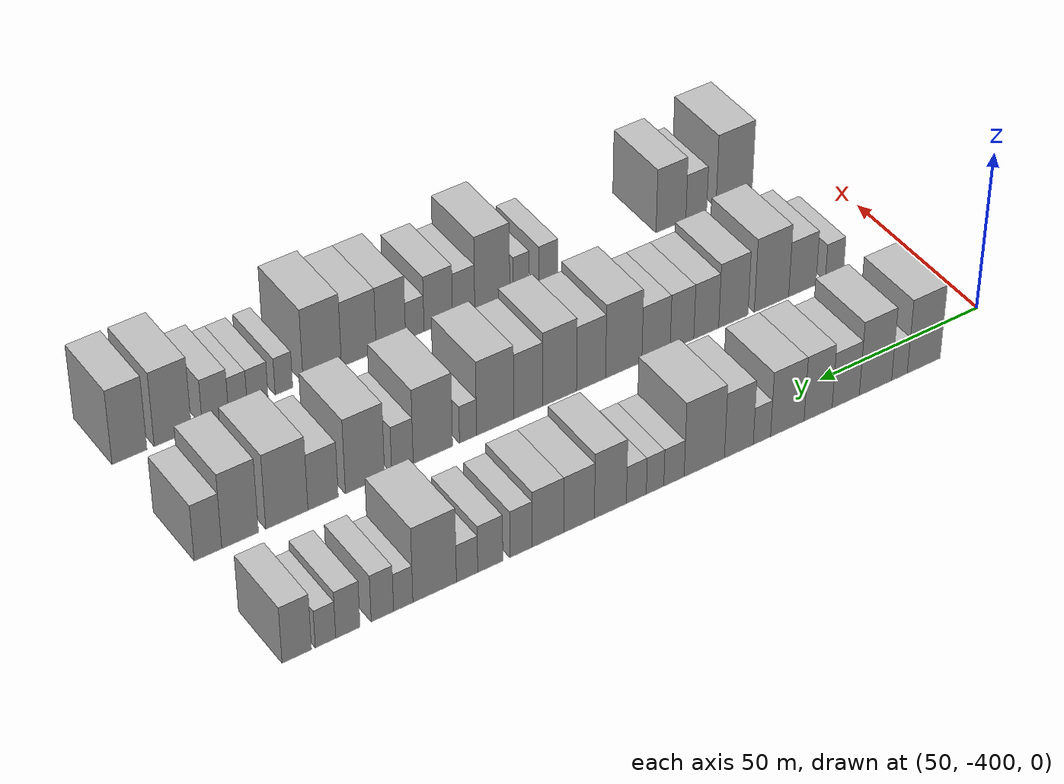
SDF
<sdf version="1.6">
 <world name="default">
  <model name="building_1">
   <static>1</static>
   <pose>50.0000 -374.7621 0 0.000000 0.000000 0.000000</pose>
   <link name="link">
    <pose>0 0 12.00 0 0 0</pose>
    <collision name="collision"><geometry><box><size>20.0000 10.4758 24.0000</size></box></geometry></collision>
    <visual name="visual">
     <cast_shadows>0</cast_shadows>
     <geometry><box><size>20.0000 10.4758 24.0000</size></box></geometry>
     <material>
      <script>
       <uri>model://HANNAS_wall/materials/scripts</uri>
       <uri>model://HANNAS_wall/materials/textures</uri>
       <name>vrc/HANNAS_wall</name>
      </script>
     </material>
    </visual>
   </link>
  </model>
  <model name="building_2">
   <static>1</static>
   <pose>50.0000 -367.0660 0 0.000000 0.000000 0.000000</pose>
   <link name="link">
    <pose>0 0 6.00 0 0 0</pose>
    <collision name="collision"><geometry><box><size>20.0000 4.9163 12.0000</size></box></geometry></collision>
    <visual name="visual">
     <cast_shadows>0</cast_shadows>
     <geometry><box><size>20.0000 4.9163 12.0000</size></box></geometry>
     <material>
      <script>
       <uri>model://HANNAS_wall/materials/scripts</uri>
       <uri>model://HANNAS_wall/materials/textures</uri>
       <name>vrc/HANNAS_wall</name>
      </script>
     </material>
    </visual>
   </link>
  </model>
  <model name="building_3">
   <static>1</static>
   <pose>50.0000 -359.5411 0 0.000000 0.000000 0.000000</pose>
   <link name="link">
    <pose>0 0 12.00 0 0 0</pose>
    <collision name="collision"><geometry><box><size>20.0000 10.1335 24.0000</size></box></geometry></collision>
    <visual name="visual">
     <cast_shadows>0</cast_shadows>
     <geometry><box><size>20.0000 10.1335 24.0000</size></box></geometry>
     <material>
      <script>
       <uri>model://HANNAS_wall/materials/scripts</uri>
       <uri>model://HANNAS_wall/materials/textures</uri>
       <name>vrc/HANNAS_wall</name>
      </script>
     </material>
    </visual>
   </link>
  </model>
  <model name="building_4">
   <static>1</static>
   <pose>50.0000 -350.2581 0 0.000000 0.000000 0.000000</pose>
   <link name="link">
    <pose>0 0 9.00 0 0 0</pose>
    <collision name="collision"><geometry><box><size>20.0000 8.4324 18.0000</size></box></geometry></collision>
    <visual name="visual">
     <cast_shadows>0</cast_shadows>
     <geometry><box><size>20.0000 8.4324 18.0000</size></box></geometry>
     <material>
      <script>
       <uri>model://HANNAS_wall/materials/scripts</uri>
       <uri>model://HANNAS_wall/materials/textures</uri>
       <name>vrc/HANNAS_wall</name>
      </script>
     </material>
    </visual>
   </link>
  </model>
  <model name="building_5">
   <static>1</static>
   <pose>50.0000 -341.7253 0 0.000000 0.000000 0.000000</pose>
   <link name="link">
    <pose>0 0 10.50 0 0 0</pose>
    <collision name="collision"><geometry><box><size>20.0000 8.6331 21.0000</size></box></geometry></collision>
    <visual name="visual">
     <cast_shadows>0</cast_shadows>
     <geometry><box><size>20.0000 8.6331 21.0000</size></box></geometry>
     <material>
      <script>
       <uri>model://HANNAS_wall/materials/scripts</uri>
       <uri>model://HANNAS_wall/materials/textures</uri>
       <name>vrc/HANNAS_wall</name>
      </script>
     </material>
    </visual>
   </link>
  </model>
  <model name="building_6">
   <static>1</static>
   <pose>50.0000 -332.3009 0 0.000000 0.000000 0.000000</pose>
   <link name="link">
    <pose>0 0 10.50 0 0 0</pose>
    <collision name="collision"><geometry><box><size>20.0000 10.2156 21.0000</size></box></geometry></collision>
    <visual name="visual">
     <cast_shadows>0</cast_shadows>
     <geometry><box><size>20.0000 10.2156 21.0000</size></box></geometry>
     <material>
      <script>
       <uri>model://HANNAS_wall/materials/scripts</uri>
       <uri>model://HANNAS_wall/materials/textures</uri>
       <name>vrc/HANNAS_wall</name>
      </script>
     </material>
    </visual>
   </link>
  </model>
  <model name="building_7">
   <static>1</static>
   <pose>50.0000 -324.5633 0 0.000000 0.000000 0.000000</pose>
   <link name="link">
    <pose>0 0 6.00 0 0 0</pose>
    <collision name="collision"><geometry><box><size>20.0000 5.2597 12.0000</size></box></geometry></collision>
    <visual name="visual">
     <cast_shadows>0</cast_shadows>
     <geometry><box><size>20.0000 5.2597 12.0000</size></box></geometry>
     <material>
      <script>
       <uri>model://HANNAS_wall/materials/scripts</uri>
       <uri>model://HANNAS_wall/materials/textures</uri>
       <name>vrc/HANNAS_wall</name>
      </script>
     </material>
    </visual>
   </link>
  </model>
  <model name="building_8">
   <static>1</static>
   <pose>50.0000 -317.5954 0 0.000000 0.000000 0.000000</pose>
   <link name="link">
    <pose>0 0 10.50 0 0 0</pose>
    <collision name="collision"><geometry><box><size>20.0000 8.6762 21.0000</size></box></geometry></collision>
    <visual name="visual">
     <cast_shadows>0</cast_shadows>
     <geometry><box><size>20.0000 8.6762 21.0000</size></box></geometry>
     <material>
      <script>
       <uri>model://HANNAS_wall/materials/scripts</uri>
       <uri>model://HANNAS_wall/materials/textures</uri>
       <name>vrc/HANNAS_wall</name>
      </script>
     </material>
    </visual>
   </link>
  </model>
  <model name="building_9">
   <static>1</static>
   <pose>50.0000 -307.2627 0 0.000000 0.000000 0.000000</pose>
   <link name="link">
    <pose>0 0 12.00 0 0 0</pose>
    <collision name="collision"><geometry><box><size>20.0000 11.9893 24.0000</size></box></geometry></collision>
    <visual name="visual">
     <cast_shadows>0</cast_shadows>
     <geometry><box><size>20.0000 11.9893 24.0000</size></box></geometry>
     <material>
      <script>
       <uri>model://HANNAS_wall/materials/scripts</uri>
       <uri>model://HANNAS_wall/materials/textures</uri>
       <name>vrc/HANNAS_wall</name>
      </script>
     </material>
    </visual>
   </link>
  </model>
  <model name="building_10">
   <static>1</static>
   <pose>50.0000 -298.2695 0 0.000000 0.000000 0.000000</pose>
   <link name="link">
    <pose>0 0 6.00 0 0 0</pose>
    <collision name="collision"><geometry><box><size>20.0000 5.9970 12.0000</size></box></geometry></collision>
    <visual name="visual">
     <cast_shadows>0</cast_shadows>
     <geometry><box><size>20.0000 5.9970 12.0000</size></box></geometry>
     <material>
      <script>
       <uri>model://HANNAS_wall/materials/scripts</uri>
       <uri>model://HANNAS_wall/materials/textures</uri>
       <name>vrc/HANNAS_wall</name>
      </script>
     </material>
    </visual>
   </link>
  </model>
  <model name="building_11">
   <static>1</static>
   <pose>50.0000 -292.7039 0 0.000000 0.000000 0.000000</pose>
   <link name="link">
    <pose>0 0 6.00 0 0 0</pose>
    <collision name="collision"><geometry><box><size>20.0000 5.1343 12.0000</size></box></geometry></collision>
    <visual name="visual">
     <cast_shadows>0</cast_shadows>
     <geometry><box><size>20.0000 5.1343 12.0000</size></box></geometry>
     <material>
      <script>
       <uri>model://HANNAS_wall/materials/scripts</uri>
       <uri>model://HANNAS_wall/materials/textures</uri>
       <name>vrc/HANNAS_wall</name>
      </script>
     </material>
    </visual>
   </link>
  </model>
  <model name="building_12">
   <static>1</static>
   <pose>50.0000 -287.2224 0 0.000000 0.000000 0.000000</pose>
   <link name="link">
    <pose>0 0 6.00 0 0 0</pose>
    <collision name="collision"><geometry><box><size>20.0000 5.8285 12.0000</size></box></geometry></collision>
    <visual name="visual">
     <cast_shadows>0</cast_shadows>
     <geometry><box><size>20.0000 5.8285 12.0000</size></box></geometry>
     <material>
      <script>
       <uri>model://HANNAS_wall/materials/scripts</uri>
       <uri>model://HANNAS_wall/materials/textures</uri>
       <name>vrc/HANNAS_wall</name>
      </script>
     </material>
    </visual>
   </link>
  </model>
  <model name="building_13">
   <static>1</static>
   <pose>50.0000 -279.6714 0 0.000000 0.000000 0.000000</pose>
   <link name="link">
    <pose>0 0 10.50 0 0 0</pose>
    <collision name="collision"><geometry><box><size>20.0000 9.2735 21.0000</size></box></geometry></collision>
    <visual name="visual">
     <cast_shadows>0</cast_shadows>
     <geometry><box><size>20.0000 9.2735 21.0000</size></box></geometry>
     <material>
      <script>
       <uri>model://HANNAS_wall/materials/scripts</uri>
       <uri>model://HANNAS_wall/materials/textures</uri>
       <name>vrc/HANNAS_wall</name>
      </script>
     </material>
    </visual>
   </link>
  </model>
  <model name="building_14">
   <static>1</static>
   <pose>50.0000 -270.6329 0 0.000000 0.000000 0.000000</pose>
   <link name="link">
    <pose>0 0 9.00 0 0 0</pose>
    <collision name="collision"><geometry><box><size>20.0000 8.8036 18.0000</size></box></geometry></collision>
    <visual name="visual">
     <cast_shadows>0</cast_shadows>
     <geometry><box><size>20.0000 8.8036 18.0000</size></box></geometry>
     <material>
      <script>
       <uri>model://HANNAS_wall/materials/scripts</uri>
       <uri>model://HANNAS_wall/materials/textures</uri>
       <name>vrc/HANNAS_wall</name>
      </script>
     </material>
    </visual>
   </link>
  </model>
  <model name="building_15">
   <static>1</static>
   <pose>50.0000 -261.7483 0 0.000000 0.000000 0.000000</pose>
   <link name="link">
    <pose>0 0 9.00 0 0 0</pose>
    <collision name="collision"><geometry><box><size>20.0000 8.9656 18.0000</size></box></geometry></collision>
    <visual name="visual">
     <cast_shadows>0</cast_shadows>
     <geometry><box><size>20.0000 8.9656 18.0000</size></box></geometry>
     <material>
      <script>
       <uri>model://HANNAS_wall/materials/scripts</uri>
       <uri>model://HANNAS_wall/materials/textures</uri>
       <name>vrc/HANNAS_wall</name>
      </script>
     </material>
    </visual>
   </link>
  </model>
  <model name="building_16">
   <static>1</static>
   <pose>50.0000 -254.1331 0 0.000000 0.000000 0.000000</pose>
   <link name="link">
    <pose>0 0 7.50 0 0 0</pose>
    <collision name="collision"><geometry><box><size>20.0000 6.2648 15.0000</size></box></geometry></collision>
    <visual name="visual">
     <cast_shadows>0</cast_shadows>
     <geometry><box><size>20.0000 6.2648 15.0000</size></box></geometry>
     <material>
      <script>
       <uri>model://HANNAS_wall/materials/scripts</uri>
       <uri>model://HANNAS_wall/materials/textures</uri>
       <name>vrc/HANNAS_wall</name>
      </script>
     </material>
    </visual>
   </link>
  </model>
  <model name="building_17">
   <static>1</static>
   <pose>50.0000 -245.4952 0 0.000000 0.000000 0.000000</pose>
   <link name="link">
    <pose>0 0 7.50 0 0 0</pose>
    <collision name="collision"><geometry><box><size>20.0000 7.0111 15.0000</size></box></geometry></collision>
    <visual name="visual">
     <cast_shadows>0</cast_shadows>
     <geometry><box><size>20.0000 7.0111 15.0000</size></box></geometry>
     <material>
      <script>
       <uri>model://HANNAS_wall/materials/scripts</uri>
       <uri>model://HANNAS_wall/materials/textures</uri>
       <name>vrc/HANNAS_wall</name>
      </script>
     </material>
    </visual>
   </link>
  </model>
  <model name="building_18">
   <static>1</static>
   <pose>50.0000 -239.0302 0 0.000000 0.000000 0.000000</pose>
   <link name="link">
    <pose>0 0 6.00 0 0 0</pose>
    <collision name="collision"><geometry><box><size>20.0000 5.9189 12.0000</size></box></geometry></collision>
    <visual name="visual">
     <cast_shadows>0</cast_shadows>
     <geometry><box><size>20.0000 5.9189 12.0000</size></box></geometry>
     <material>
      <script>
       <uri>model://HANNAS_wall/materials/scripts</uri>
       <uri>model://HANNAS_wall/materials/textures</uri>
       <name>vrc/HANNAS_wall</name>
      </script>
     </material>
    </visual>
   </link>
  </model>
  <model name="building_19">
   <static>1</static>
   <pose>50.0000 -230.0739 0 0.000000 0.000000 0.000000</pose>
   <link name="link">
    <pose>0 0 12.00 0 0 0</pose>
    <collision name="collision"><geometry><box><size>20.0000 11.9937 24.0000</size></box></geometry></collision>
    <visual name="visual">
     <cast_shadows>0</cast_shadows>
     <geometry><box><size>20.0000 11.9937 24.0000</size></box></geometry>
     <material>
      <script>
       <uri>model://HANNAS_wall/materials/scripts</uri>
       <uri>model://HANNAS_wall/materials/textures</uri>
       <name>vrc/HANNAS_wall</name>
      </script>
     </material>
    </visual>
   </link>
  </model>
  <model name="building_20">
   <static>1</static>
   <pose>50.0000 -221.4494 0 0.000000 0.000000 0.000000</pose>
   <link name="link">
    <pose>0 0 6.00 0 0 0</pose>
    <collision name="collision"><geometry><box><size>20.0000 5.2555 12.0000</size></box></geometry></collision>
    <visual name="visual">
     <cast_shadows>0</cast_shadows>
     <geometry><box><size>20.0000 5.2555 12.0000</size></box></geometry>
     <material>
      <script>
       <uri>model://HANNAS_wall/materials/scripts</uri>
       <uri>model://HANNAS_wall/materials/textures</uri>
       <name>vrc/HANNAS_wall</name>
      </script>
     </material>
    </visual>
   </link>
  </model>
  <model name="building_21">
   <static>1</static>
   <pose>50.0000 -215.7744 0 0.000000 0.000000 0.000000</pose>
   <link name="link">
    <pose>0 0 7.50 0 0 0</pose>
    <collision name="collision"><geometry><box><size>20.0000 6.0945 15.0000</size></box></geometry></collision>
    <visual name="visual">
     <cast_shadows>0</cast_shadows>
     <geometry><box><size>20.0000 6.0945 15.0000</size></box></geometry>
     <material>
      <script>
       <uri>model://HANNAS_wall/materials/scripts</uri>
       <uri>model://HANNAS_wall/materials/textures</uri>
       <name>vrc/HANNAS_wall</name>
      </script>
     </material>
    </visual>
   </link>
  </model>
  <model name="building_22">
   <static>1</static>
   <pose>50.0000 -206.4561 0 0.000000 0.000000 0.000000</pose>
   <link name="link">
    <pose>0 0 7.50 0 0 0</pose>
    <collision name="collision"><geometry><box><size>20.0000 6.5420 15.0000</size></box></geometry></collision>
    <visual name="visual">
     <cast_shadows>0</cast_shadows>
     <geometry><box><size>20.0000 6.5420 15.0000</size></box></geometry>
     <material>
      <script>
       <uri>model://HANNAS_wall/materials/scripts</uri>
       <uri>model://HANNAS_wall/materials/textures</uri>
       <name>vrc/HANNAS_wall</name>
      </script>
     </material>
    </visual>
   </link>
  </model>
  <model name="building_23">
   <static>1</static>
   <pose>50.0000 -200.4488 0 0.000000 0.000000 0.000000</pose>
   <link name="link">
    <pose>0 0 6.00 0 0 0</pose>
    <collision name="collision"><geometry><box><size>20.0000 5.4726 12.0000</size></box></geometry></collision>
    <visual name="visual">
     <cast_shadows>0</cast_shadows>
     <geometry><box><size>20.0000 5.4726 12.0000</size></box></geometry>
     <material>
      <script>
       <uri>model://HANNAS_wall/materials/scripts</uri>
       <uri>model://HANNAS_wall/materials/textures</uri>
       <name>vrc/HANNAS_wall</name>
      </script>
     </material>
    </visual>
   </link>
  </model>
  <model name="building_24">
   <static>1</static>
   <pose>50.0000 -192.8077 0 0.000000 0.000000 0.000000</pose>
   <link name="link">
    <pose>0 0 9.00 0 0 0</pose>
    <collision name="collision"><geometry><box><size>20.0000 7.8096 18.0000</size></box></geometry></collision>
    <visual name="visual">
     <cast_shadows>0</cast_shadows>
     <geometry><box><size>20.0000 7.8096 18.0000</size></box></geometry>
     <material>
      <script>
       <uri>model://HANNAS_wall/materials/scripts</uri>
       <uri>model://HANNAS_wall/materials/textures</uri>
       <name>vrc/HANNAS_wall</name>
      </script>
     </material>
    </visual>
   </link>
  </model>
  <model name="building_86">
   <static>1</static>
   <pose>90.0000 -377.0610 0 0.000000 0.000000 0.000000</pose>
   <link name="link">
    <pose>0 0 6.00 0 0 0</pose>
    <collision name="collision"><geometry><box><size>20.0000 5.8781 12.0000</size></box></geometry></collision>
    <visual name="visual">
     <cast_shadows>0</cast_shadows>
     <geometry><box><size>20.0000 5.8781 12.0000</size></box></geometry>
     <material>
      <script>
       <uri>model://HANNAS_wall/materials/scripts</uri>
       <uri>model://HANNAS_wall/materials/textures</uri>
       <name>vrc/HANNAS_wall</name>
      </script>
     </material>
    </visual>
   </link>
  </model>
  <model name="building_87">
   <static>1</static>
   <pose>90.0000 -366.7489 0 0.000000 0.000000 0.000000</pose>
   <link name="link">
    <pose>0 0 9.00 0 0 0</pose>
    <collision name="collision"><geometry><box><size>20.0000 8.7460 18.0000</size></box></geometry></collision>
    <visual name="visual">
     <cast_shadows>0</cast_shadows>
     <geometry><box><size>20.0000 8.7460 18.0000</size></box></geometry>
     <material>
      <script>
       <uri>model://HANNAS_wall/materials/scripts</uri>
       <uri>model://HANNAS_wall/materials/textures</uri>
       <name>vrc/HANNAS_wall</name>
      </script>
     </material>
    </visual>
   </link>
  </model>
  <model name="building_88">
   <static>1</static>
   <pose>90.0000 -356.9333 0 0.000000 0.000000 0.000000</pose>
   <link name="link">
    <pose>0 0 12.00 0 0 0</pose>
    <collision name="collision"><geometry><box><size>20.0000 10.8852 24.0000</size></box></geometry></collision>
    <visual name="visual">
     <cast_shadows>0</cast_shadows>
     <geometry><box><size>20.0000 10.8852 24.0000</size></box></geometry>
     <material>
      <script>
       <uri>model://HANNAS_wall/materials/scripts</uri>
       <uri>model://HANNAS_wall/materials/textures</uri>
       <name>vrc/HANNAS_wall</name>
      </script>
     </material>
    </visual>
   </link>
  </model>
  <model name="building_89">
   <static>1</static>
   <pose>90.0000 -344.9019 0 0.000000 0.000000 0.000000</pose>
   <link name="link">
    <pose>0 0 10.50 0 0 0</pose>
    <collision name="collision"><geometry><box><size>20.0000 9.1775 21.0000</size></box></geometry></collision>
    <visual name="visual">
     <cast_shadows>0</cast_shadows>
     <geometry><box><size>20.0000 9.1775 21.0000</size></box></geometry>
     <material>
      <script>
       <uri>model://HANNAS_wall/materials/scripts</uri>
       <uri>model://HANNAS_wall/materials/textures</uri>
       <name>vrc/HANNAS_wall</name>
      </script>
     </material>
    </visual>
   </link>
  </model>
  <model name="building_90">
   <static>1</static>
   <pose>90.0000 -336.4370 0 0.000000 0.000000 0.000000</pose>
   <link name="link">
    <pose>0 0 9.00 0 0 0</pose>
    <collision name="collision"><geometry><box><size>20.0000 7.7524 18.0000</size></box></geometry></collision>
    <visual name="visual">
     <cast_shadows>0</cast_shadows>
     <geometry><box><size>20.0000 7.7524 18.0000</size></box></geometry>
     <material>
      <script>
       <uri>model://HANNAS_wall/materials/scripts</uri>
       <uri>model://HANNAS_wall/materials/textures</uri>
       <name>vrc/HANNAS_wall</name>
      </script>
     </material>
    </visual>
   </link>
  </model>
  <model name="building_91">
   <static>1</static>
   <pose>90.0000 -328.9066 0 0.000000 0.000000 0.000000</pose>
   <link name="link">
    <pose>0 0 9.00 0 0 0</pose>
    <collision name="collision"><geometry><box><size>20.0000 7.3084 18.0000</size></box></geometry></collision>
    <visual name="visual">
     <cast_shadows>0</cast_shadows>
     <geometry><box><size>20.0000 7.3084 18.0000</size></box></geometry>
     <material>
      <script>
       <uri>model://HANNAS_wall/materials/scripts</uri>
       <uri>model://HANNAS_wall/materials/textures</uri>
       <name>vrc/HANNAS_wall</name>
      </script>
     </material>
    </visual>
   </link>
  </model>
  <model name="building_92">
   <static>1</static>
   <pose>90.0000 -320.9215 0 0.000000 0.000000 0.000000</pose>
   <link name="link">
    <pose>0 0 9.00 0 0 0</pose>
    <collision name="collision"><geometry><box><size>20.0000 8.6618 18.0000</size></box></geometry></collision>
    <visual name="visual">
     <cast_shadows>0</cast_shadows>
     <geometry><box><size>20.0000 8.6618 18.0000</size></box></geometry>
     <material>
      <script>
       <uri>model://HANNAS_wall/materials/scripts</uri>
       <uri>model://HANNAS_wall/materials/textures</uri>
       <name>vrc/HANNAS_wall</name>
      </script>
     </material>
    </visual>
   </link>
  </model>
  <model name="building_93">
   <static>1</static>
   <pose>90.0000 -311.0785 0 0.000000 0.000000 0.000000</pose>
   <link name="link">
    <pose>0 0 12.00 0 0 0</pose>
    <collision name="collision"><geometry><box><size>20.0000 11.0243 24.0000</size></box></geometry></collision>
    <visual name="visual">
     <cast_shadows>0</cast_shadows>
     <geometry><box><size>20.0000 11.0243 24.0000</size></box></geometry>
     <material>
      <script>
       <uri>model://HANNAS_wall/materials/scripts</uri>
       <uri>model://HANNAS_wall/materials/textures</uri>
       <name>vrc/HANNAS_wall</name>
      </script>
     </material>
    </visual>
   </link>
  </model>
  <model name="building_94">
   <static>1</static>
   <pose>90.0000 -301.2096 0 0.000000 0.000000 0.000000</pose>
   <link name="link">
    <pose>0 0 10.50 0 0 0</pose>
    <collision name="collision"><geometry><box><size>20.0000 8.7133 21.0000</size></box></geometry></collision>
    <visual name="visual">
     <cast_shadows>0</cast_shadows>
     <geometry><box><size>20.0000 8.7133 21.0000</size></box></geometry>
     <material>
      <script>
       <uri>model://HANNAS_wall/materials/scripts</uri>
       <uri>model://HANNAS_wall/materials/textures</uri>
       <name>vrc/HANNAS_wall</name>
      </script>
     </material>
    </visual>
   </link>
  </model>
  <model name="building_95">
   <static>1</static>
   <pose>90.0000 -291.8236 0 0.000000 0.000000 0.000000</pose>
   <link name="link">
    <pose>0 0 12.00 0 0 0</pose>
    <collision name="collision"><geometry><box><size>20.0000 10.0587 24.0000</size></box></geometry></collision>
    <visual name="visual">
     <cast_shadows>0</cast_shadows>
     <geometry><box><size>20.0000 10.0587 24.0000</size></box></geometry>
     <material>
      <script>
       <uri>model://HANNAS_wall/materials/scripts</uri>
       <uri>model://HANNAS_wall/materials/textures</uri>
       <name>vrc/HANNAS_wall</name>
      </script>
     </material>
    </visual>
   </link>
  </model>
  <model name="building_96">
   <static>1</static>
   <pose>90.0000 -282.4961 0 0.000000 0.000000 0.000000</pose>
   <link name="link">
    <pose>0 0 10.50 0 0 0</pose>
    <collision name="collision"><geometry><box><size>20.0000 8.5964 21.0000</size></box></geometry></collision>
    <visual name="visual">
     <cast_shadows>0</cast_shadows>
     <geometry><box><size>20.0000 8.5964 21.0000</size></box></geometry>
     <material>
      <script>
       <uri>model://HANNAS_wall/materials/scripts</uri>
       <uri>model://HANNAS_wall/materials/textures</uri>
       <name>vrc/HANNAS_wall</name>
      </script>
     </material>
    </visual>
   </link>
  </model>
  <model name="building_97">
   <static>1</static>
   <pose>90.0000 -272.7715 0 0.000000 0.000000 0.000000</pose>
   <link name="link">
    <pose>0 0 12.00 0 0 0</pose>
    <collision name="collision"><geometry><box><size>20.0000 10.8529 24.0000</size></box></geometry></collision>
    <visual name="visual">
     <cast_shadows>0</cast_shadows>
     <geometry><box><size>20.0000 10.8529 24.0000</size></box></geometry>
     <material>
      <script>
       <uri>model://HANNAS_wall/materials/scripts</uri>
       <uri>model://HANNAS_wall/materials/textures</uri>
       <name>vrc/HANNAS_wall</name>
      </script>
     </material>
    </visual>
   </link>
  </model>
  <model name="building_98">
   <static>1</static>
   <pose>90.0000 -264.8608 0 0.000000 0.000000 0.000000</pose>
   <link name="link">
    <pose>0 0 6.00 0 0 0</pose>
    <collision name="collision"><geometry><box><size>20.0000 4.9684 12.0000</size></box></geometry></collision>
    <visual name="visual">
     <cast_shadows>0</cast_shadows>
     <geometry><box><size>20.0000 4.9684 12.0000</size></box></geometry>
     <material>
      <script>
       <uri>model://HANNAS_wall/materials/scripts</uri>
       <uri>model://HANNAS_wall/materials/textures</uri>
       <name>vrc/HANNAS_wall</name>
      </script>
     </material>
    </visual>
   </link>
  </model>
  <model name="building_99">
   <static>1</static>
   <pose>90.0000 -254.7331 0 0.000000 0.000000 0.000000</pose>
   <link name="link">
    <pose>0 0 12.00 0 0 0</pose>
    <collision name="collision"><geometry><box><size>20.0000 11.2869 24.0000</size></box></geometry></collision>
    <visual name="visual">
     <cast_shadows>0</cast_shadows>
     <geometry><box><size>20.0000 11.2869 24.0000</size></box></geometry>
     <material>
      <script>
       <uri>model://HANNAS_wall/materials/scripts</uri>
       <uri>model://HANNAS_wall/materials/textures</uri>
       <name>vrc/HANNAS_wall</name>
      </script>
     </material>
    </visual>
   </link>
  </model>
  <model name="building_100">
   <static>1</static>
   <pose>90.0000 -246.0174 0 0.000000 0.000000 0.000000</pose>
   <link name="link">
    <pose>0 0 7.50 0 0 0</pose>
    <collision name="collision"><geometry><box><size>20.0000 6.1445 15.0000</size></box></geometry></collision>
    <visual name="visual">
     <cast_shadows>0</cast_shadows>
     <geometry><box><size>20.0000 6.1445 15.0000</size></box></geometry>
     <material>
      <script>
       <uri>model://HANNAS_wall/materials/scripts</uri>
       <uri>model://HANNAS_wall/materials/textures</uri>
       <name>vrc/HANNAS_wall</name>
      </script>
     </material>
    </visual>
   </link>
  </model>
  <model name="building_101">
   <static>1</static>
   <pose>90.0000 -235.4134 0 0.000000 0.000000 0.000000</pose>
   <link name="link">
    <pose>0 0 12.00 0 0 0</pose>
    <collision name="collision"><geometry><box><size>20.0000 11.0635 24.0000</size></box></geometry></collision>
    <visual name="visual">
     <cast_shadows>0</cast_shadows>
     <geometry><box><size>20.0000 11.0635 24.0000</size></box></geometry>
     <material>
      <script>
       <uri>model://HANNAS_wall/materials/scripts</uri>
       <uri>model://HANNAS_wall/materials/textures</uri>
       <name>vrc/HANNAS_wall</name>
      </script>
     </material>
    </visual>
   </link>
  </model>
  <model name="building_102">
   <static>1</static>
   <pose>90.0000 -223.6654 0 0.000000 0.000000 0.000000</pose>
   <link name="link">
    <pose>0 0 9.00 0 0 0</pose>
    <collision name="collision"><geometry><box><size>20.0000 8.4326 18.0000</size></box></geometry></collision>
    <visual name="visual">
     <cast_shadows>0</cast_shadows>
     <geometry><box><size>20.0000 8.4326 18.0000</size></box></geometry>
     <material>
      <script>
       <uri>model://HANNAS_wall/materials/scripts</uri>
       <uri>model://HANNAS_wall/materials/textures</uri>
       <name>vrc/HANNAS_wall</name>
      </script>
     </material>
    </visual>
   </link>
  </model>
  <model name="building_103">
   <static>1</static>
   <pose>90.0000 -213.6221 0 0.000000 0.000000 0.000000</pose>
   <link name="link">
    <pose>0 0 12.00 0 0 0</pose>
    <collision name="collision"><geometry><box><size>20.0000 11.6539 24.0000</size></box></geometry></collision>
    <visual name="visual">
     <cast_shadows>0</cast_shadows>
     <geometry><box><size>20.0000 11.6539 24.0000</size></box></geometry>
     <material>
      <script>
       <uri>model://HANNAS_wall/materials/scripts</uri>
       <uri>model://HANNAS_wall/materials/textures</uri>
       <name>vrc/HANNAS_wall</name>
      </script>
     </material>
    </visual>
   </link>
  </model>
  <model name="building_104">
   <static>1</static>
   <pose>90.0000 -200.7996 0 0.000000 0.000000 0.000000</pose>
   <link name="link">
    <pose>0 0 12.00 0 0 0</pose>
    <collision name="collision"><geometry><box><size>20.0000 9.9910 24.0000</size></box></geometry></collision>
    <visual name="visual">
     <cast_shadows>0</cast_shadows>
     <geometry><box><size>20.0000 9.9910 24.0000</size></box></geometry>
     <material>
      <script>
       <uri>model://HANNAS_wall/materials/scripts</uri>
       <uri>model://HANNAS_wall/materials/textures</uri>
       <name>vrc/HANNAS_wall</name>
      </script>
     </material>
    </visual>
   </link>
  </model>
  <model name="building_105">
   <static>1</static>
   <pose>90.0000 -192.0732 0 0.000000 0.000000 0.000000</pose>
   <link name="link">
    <pose>0 0 9.00 0 0 0</pose>
    <collision name="collision"><geometry><box><size>20.0000 7.4619 18.0000</size></box></geometry></collision>
    <visual name="visual">
     <cast_shadows>0</cast_shadows>
     <geometry><box><size>20.0000 7.4619 18.0000</size></box></geometry>
     <material>
      <script>
       <uri>model://HANNAS_wall/materials/scripts</uri>
       <uri>model://HANNAS_wall/materials/textures</uri>
       <name>vrc/HANNAS_wall</name>
      </script>
     </material>
    </visual>
   </link>
  </model>
  <model name="building_165">
   <static>1</static>
   <pose>130.0000 -374.0977 0 0.000000 0.000000 0.000000</pose>
   <link name="link">
    <pose>0 0 12.00 0 0 0</pose>
    <collision name="collision"><geometry><box><size>20.0000 11.8046 24.0000</size></box></geometry></collision>
    <visual name="visual">
     <cast_shadows>0</cast_shadows>
     <geometry><box><size>20.0000 11.8046 24.0000</size></box></geometry>
     <material>
      <script>
       <uri>model://HANNAS_wall/materials/scripts</uri>
       <uri>model://HANNAS_wall/materials/textures</uri>
       <name>vrc/HANNAS_wall</name>
      </script>
     </material>
    </visual>
   </link>
  </model>
  <model name="building_166">
   <static>1</static>
   <pose>130.0000 -361.8276 0 0.000000 0.000000 0.000000</pose>
   <link name="link">
    <pose>0 0 7.50 0 0 0</pose>
    <collision name="collision"><geometry><box><size>20.0000 6.7355 15.0000</size></box></geometry></collision>
    <visual name="visual">
     <cast_shadows>0</cast_shadows>
     <geometry><box><size>20.0000 6.7355 15.0000</size></box></geometry>
     <material>
      <script>
       <uri>model://HANNAS_wall/materials/scripts</uri>
       <uri>model://HANNAS_wall/materials/textures</uri>
       <name>vrc/HANNAS_wall</name>
      </script>
     </material>
    </visual>
   </link>
  </model>
  <model name="building_167">
   <static>1</static>
   <pose>130.0000 -353.6783 0 0.000000 0.000000 0.000000</pose>
   <link name="link">
    <pose>0 0 10.50 0 0 0</pose>
    <collision name="collision"><geometry><box><size>20.0000 9.5631 21.0000</size></box></geometry></collision>
    <visual name="visual">
     <cast_shadows>0</cast_shadows>
     <geometry><box><size>20.0000 9.5631 21.0000</size></box></geometry>
     <material>
      <script>
       <uri>model://HANNAS_wall/materials/scripts</uri>
       <uri>model://HANNAS_wall/materials/textures</uri>
       <name>vrc/HANNAS_wall</name>
      </script>
     </material>
    </visual>
   </link>
  </model>
  <model name="building_168">
   <static>1</static>
   <pose>130.0000 -315.0276 0 0.000000 0.000000 0.000000</pose>
   <link name="link">
    <pose>0 0 6.00 0 0 0</pose>
    <collision name="collision"><geometry><box><size>20.0000 5.9128 12.0000</size></box></geometry></collision>
    <visual name="visual">
     <cast_shadows>0</cast_shadows>
     <geometry><box><size>20.0000 5.9128 12.0000</size></box></geometry>
     <material>
      <script>
       <uri>model://HANNAS_wall/materials/scripts</uri>
       <uri>model://HANNAS_wall/materials/textures</uri>
       <name>vrc/HANNAS_wall</name>
      </script>
     </material>
    </visual>
   </link>
  </model>
  <model name="building_169">
   <static>1</static>
   <pose>130.0000 -306.5994 0 0.000000 0.000000 0.000000</pose>
   <link name="link">
    <pose>0 0 6.00 0 0 0</pose>
    <collision name="collision"><geometry><box><size>20.0000 4.9436 12.0000</size></box></geometry></collision>
    <visual name="visual">
     <cast_shadows>0</cast_shadows>
     <geometry><box><size>20.0000 4.9436 12.0000</size></box></geometry>
     <material>
      <script>
       <uri>model://HANNAS_wall/materials/scripts</uri>
       <uri>model://HANNAS_wall/materials/textures</uri>
       <name>vrc/HANNAS_wall</name>
      </script>
     </material>
    </visual>
   </link>
  </model>
  <model name="building_170">
   <static>1</static>
   <pose>130.0000 -297.8052 0 0.000000 0.000000 0.000000</pose>
   <link name="link">
    <pose>0 0 12.00 0 0 0</pose>
    <collision name="collision"><geometry><box><size>20.0000 10.6449 24.0000</size></box></geometry></collision>
    <visual name="visual">
     <cast_shadows>0</cast_shadows>
     <geometry><box><size>20.0000 10.6449 24.0000</size></box></geometry>
     <material>
      <script>
       <uri>model://HANNAS_wall/materials/scripts</uri>
       <uri>model://HANNAS_wall/materials/textures</uri>
       <name>vrc/HANNAS_wall</name>
      </script>
     </material>
    </visual>
   </link>
  </model>
  <model name="building_171">
   <static>1</static>
   <pose>130.0000 -289.1378 0 0.000000 0.000000 0.000000</pose>
   <link name="link">
    <pose>0 0 7.50 0 0 0</pose>
    <collision name="collision"><geometry><box><size>20.0000 6.6899 15.0000</size></box></geometry></collision>
    <visual name="visual">
     <cast_shadows>0</cast_shadows>
     <geometry><box><size>20.0000 6.6899 15.0000</size></box></geometry>
     <material>
      <script>
       <uri>model://HANNAS_wall/materials/scripts</uri>
       <uri>model://HANNAS_wall/materials/textures</uri>
       <name>vrc/HANNAS_wall</name>
      </script>
     </material>
    </visual>
   </link>
  </model>
  <model name="building_172">
   <static>1</static>
   <pose>130.0000 -281.5115 0 0.000000 0.000000 0.000000</pose>
   <link name="link">
    <pose>0 0 9.00 0 0 0</pose>
    <collision name="collision"><geometry><box><size>20.0000 8.5627 18.0000</size></box></geometry></collision>
    <visual name="visual">
     <cast_shadows>0</cast_shadows>
     <geometry><box><size>20.0000 8.5627 18.0000</size></box></geometry>
     <material>
      <script>
       <uri>model://HANNAS_wall/materials/scripts</uri>
       <uri>model://HANNAS_wall/materials/textures</uri>
       <name>vrc/HANNAS_wall</name>
      </script>
     </material>
    </visual>
   </link>
  </model>
  <model name="building_173">
   <static>1</static>
   <pose>130.0000 -274.4885 0 0.000000 0.000000 0.000000</pose>
   <link name="link">
    <pose>0 0 6.00 0 0 0</pose>
    <collision name="collision"><geometry><box><size>20.0000 5.4833 12.0000</size></box></geometry></collision>
    <visual name="visual">
     <cast_shadows>0</cast_shadows>
     <geometry><box><size>20.0000 5.4833 12.0000</size></box></geometry>
     <material>
      <script>
       <uri>model://HANNAS_wall/materials/scripts</uri>
       <uri>model://HANNAS_wall/materials/textures</uri>
       <name>vrc/HANNAS_wall</name>
      </script>
     </material>
    </visual>
   </link>
  </model>
  <model name="building_174">
   <static>1</static>
   <pose>130.0000 -267.4016 0 0.000000 0.000000 0.000000</pose>
   <link name="link">
    <pose>0 0 10.50 0 0 0</pose>
    <collision name="collision"><geometry><box><size>20.0000 8.6906 21.0000</size></box></geometry></collision>
    <visual name="visual">
     <cast_shadows>0</cast_shadows>
     <geometry><box><size>20.0000 8.6906 21.0000</size></box></geometry>
     <material>
      <script>
       <uri>model://HANNAS_wall/materials/scripts</uri>
       <uri>model://HANNAS_wall/materials/textures</uri>
       <name>vrc/HANNAS_wall</name>
      </script>
     </material>
    </visual>
   </link>
  </model>
  <model name="building_175">
   <static>1</static>
   <pose>130.0000 -257.9506 0 0.000000 0.000000 0.000000</pose>
   <link name="link">
    <pose>0 0 10.50 0 0 0</pose>
    <collision name="collision"><geometry><box><size>20.0000 10.2113 21.0000</size></box></geometry></collision>
    <visual name="visual">
     <cast_shadows>0</cast_shadows>
     <geometry><box><size>20.0000 10.2113 21.0000</size></box></geometry>
     <material>
      <script>
       <uri>model://HANNAS_wall/materials/scripts</uri>
       <uri>model://HANNAS_wall/materials/textures</uri>
       <name>vrc/HANNAS_wall</name>
      </script>
     </material>
    </visual>
   </link>
  </model>
  <model name="building_176">
   <static>1</static>
   <pose>130.0000 -247.2739 0 0.000000 0.000000 0.000000</pose>
   <link name="link">
    <pose>0 0 12.00 0 0 0</pose>
    <collision name="collision"><geometry><box><size>20.0000 11.1422 24.0000</size></box></geometry></collision>
    <visual name="visual">
     <cast_shadows>0</cast_shadows>
     <geometry><box><size>20.0000 11.1422 24.0000</size></box></geometry>
     <material>
      <script>
       <uri>model://HANNAS_wall/materials/scripts</uri>
       <uri>model://HANNAS_wall/materials/textures</uri>
       <name>vrc/HANNAS_wall</name>
      </script>
     </material>
    </visual>
   </link>
  </model>
  <model name="building_177">
   <static>1</static>
   <pose>130.0000 -236.1797 0 0.000000 0.000000 0.000000</pose>
   <link name="link">
    <pose>0 0 6.00 0 0 0</pose>
    <collision name="collision"><geometry><box><size>20.0000 5.0461 12.0000</size></box></geometry></collision>
    <visual name="visual">
     <cast_shadows>0</cast_shadows>
     <geometry><box><size>20.0000 5.0461 12.0000</size></box></geometry>
     <material>
      <script>
       <uri>model://HANNAS_wall/materials/scripts</uri>
       <uri>model://HANNAS_wall/materials/textures</uri>
       <name>vrc/HANNAS_wall</name>
      </script>
     </material>
    </visual>
   </link>
  </model>
  <model name="building_178">
   <static>1</static>
   <pose>130.0000 -228.6817 0 0.000000 0.000000 0.000000</pose>
   <link name="link">
    <pose>0 0 6.00 0 0 0</pose>
    <collision name="collision"><geometry><box><size>20.0000 5.9498 12.0000</size></box></geometry></collision>
    <visual name="visual">
     <cast_shadows>0</cast_shadows>
     <geometry><box><size>20.0000 5.9498 12.0000</size></box></geometry>
     <material>
      <script>
       <uri>model://HANNAS_wall/materials/scripts</uri>
       <uri>model://HANNAS_wall/materials/textures</uri>
       <name>vrc/HANNAS_wall</name>
      </script>
     </material>
    </visual>
   </link>
  </model>
  <model name="building_179">
   <static>1</static>
   <pose>130.0000 -223.0602 0 0.000000 0.000000 0.000000</pose>
   <link name="link">
    <pose>0 0 6.00 0 0 0</pose>
    <collision name="collision"><geometry><box><size>20.0000 5.2933 12.0000</size></box></geometry></collision>
    <visual name="visual">
     <cast_shadows>0</cast_shadows>
     <geometry><box><size>20.0000 5.2933 12.0000</size></box></geometry>
     <material>
      <script>
       <uri>model://HANNAS_wall/materials/scripts</uri>
       <uri>model://HANNAS_wall/materials/textures</uri>
       <name>vrc/HANNAS_wall</name>
      </script>
     </material>
    </visual>
   </link>
  </model>
  <model name="building_180">
   <static>1</static>
   <pose>130.0000 -216.6970 0 0.000000 0.000000 0.000000</pose>
   <link name="link">
    <pose>0 0 7.50 0 0 0</pose>
    <collision name="collision"><geometry><box><size>20.0000 7.4330 15.0000</size></box></geometry></collision>
    <visual name="visual">
     <cast_shadows>0</cast_shadows>
     <geometry><box><size>20.0000 7.4330 15.0000</size></box></geometry>
     <material>
      <script>
       <uri>model://HANNAS_wall/materials/scripts</uri>
       <uri>model://HANNAS_wall/materials/textures</uri>
       <name>vrc/HANNAS_wall</name>
      </script>
     </material>
    </visual>
   </link>
  </model>
  <model name="building_181">
   <static>1</static>
   <pose>130.0000 -204.7686 0 0.000000 0.000000 0.000000</pose>
   <link name="link">
    <pose>0 0 12.00 0 0 0</pose>
    <collision name="collision"><geometry><box><size>20.0000 10.4238 24.0000</size></box></geometry></collision>
    <visual name="visual">
     <cast_shadows>0</cast_shadows>
     <geometry><box><size>20.0000 10.4238 24.0000</size></box></geometry>
     <material>
      <script>
       <uri>model://HANNAS_wall/materials/scripts</uri>
       <uri>model://HANNAS_wall/materials/textures</uri>
       <name>vrc/HANNAS_wall</name>
      </script>
     </material>
    </visual>
   </link>
  </model>
  <model name="building_182">
   <static>1</static>
   <pose>130.0000 -192.7357 0 0.000000 0.000000 0.000000</pose>
   <link name="link">
    <pose>0 0 12.00 0 0 0</pose>
    <collision name="collision"><geometry><box><size>20.0000 9.6422 24.0000</size></box></geometry></collision>
    <visual name="visual">
     <cast_shadows>0</cast_shadows>
     <geometry><box><size>20.0000 9.6422 24.0000</size></box></geometry>
     <material>
      <script>
       <uri>model://HANNAS_wall/materials/scripts</uri>
       <uri>model://HANNAS_wall/materials/textures</uri>
       <name>vrc/HANNAS_wall</name>
      </script>
     </material>
    </visual>
   </link>
  </model>
 </world>
</sdf>
